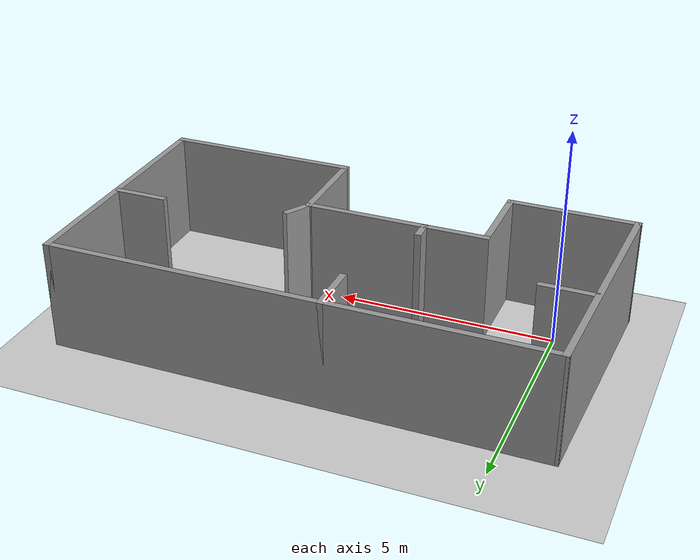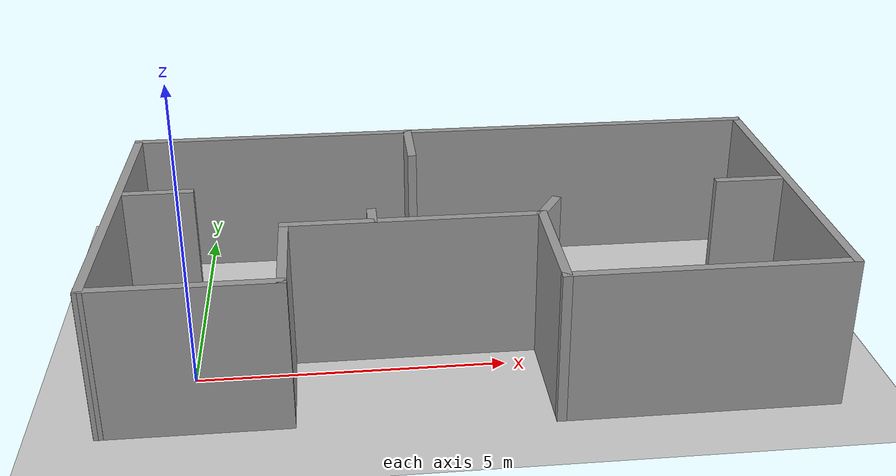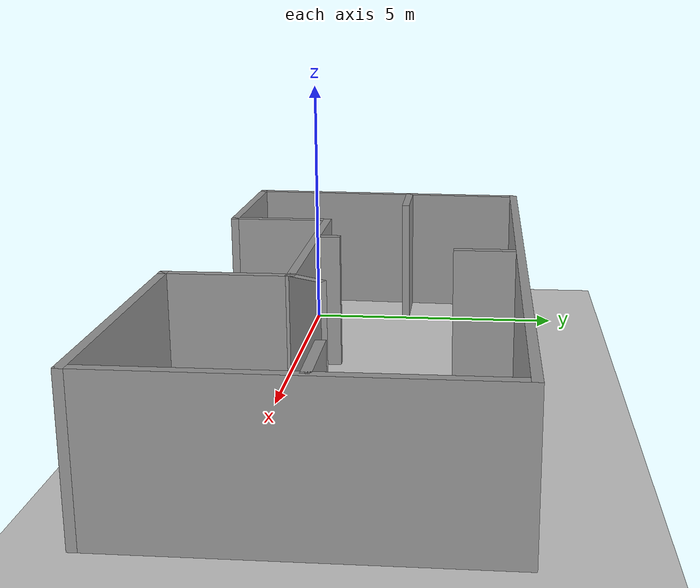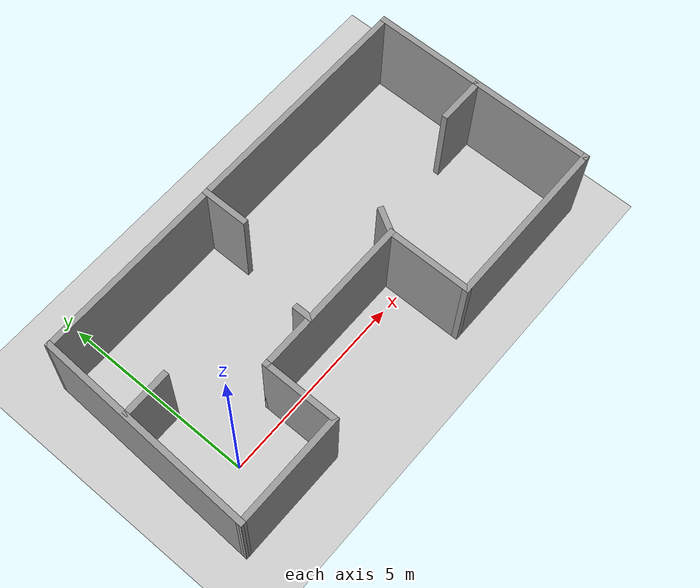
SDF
<sdf version="1.7">
 <world name="default">
  <light name="sun" type="directional">
   <pose>0 0 10 0 -0 0</pose>
   <diffuse>0.8 0.8 0.8 1</diffuse>
   <specular>0.2 0.2 0.2 1</specular>
   <attenuation>
    <range>1000</range>
    <constant>0.9</constant>
    <linear>0.01</linear>
    <quadratic>0.001</quadratic>
   </attenuation>
   <direction>-0.5 0.1 -0.9</direction>
   <spot><inner_angle>0</inner_angle><outer_angle>0</outer_angle><falloff>0</falloff></spot>
  </light>
  <model name="ground_plane">
   <static>1</static>
   <link name="link">
    <collision name="collision">
     <geometry><plane><normal>0 0 1</normal><size>100 100</size></plane></geometry>
     <surface>
      <contact><collide_bitmask>65535</collide_bitmask></contact>
      <friction><ode><mu>100</mu><mu2>50</mu2></ode></friction>
     </surface>
    </collision>
    <visual name="visual">
     <cast_shadows>0</cast_shadows>
     <geometry><plane><normal>0 0 1</normal><size>100 100</size></plane></geometry>
     <material>
      <script><uri>file://media/materials/scripts/gazebo.material</uri><name>Gazebo/Grey</name></script>
     </material>
    </visual>
   </link>
  </model>
  <gravity>0 0 -9.8</gravity>
  <magnetic_field>6e-06 2.3e-05 -4.2e-05</magnetic_field>
  <atmosphere type="adiabatic"/>
  <physics type="ode">
   <max_step_size>0.001</max_step_size>
   <real_time_factor>1</real_time_factor>
   <real_time_update_rate>1000</real_time_update_rate>
  </physics>
  <scene><ambient>0.4 0.4 0.4 1</ambient><background>0.7 0.7 0.7 1</background><shadows>1</shadows></scene>
  <audio><device>default</device></audio>
  <spherical_coordinates>
   <surface_model>EARTH_WGS84</surface_model>
   <latitude_deg>0</latitude_deg>
   <longitude_deg>0</longitude_deg>
   <elevation>0</elevation>
   <heading_deg>0</heading_deg>
  </spherical_coordinates>
  <model name="Untitled">
   <pose>4.32473 1.76635 0 0 -0 0</pose>
   <link name="Wall_0">
    <collision name="Wall_0_Collision">
     <geometry><box><size>11.25 0.15 2.5</size></box></geometry>
     <pose>0 0 1.25 0 -0 0</pose>
    </collision>
    <visual name="Wall_0_Visual">
     <pose>0 0 1.25 0 -0 0</pose>
     <geometry><box><size>11.25 0.15 2.5</size></box></geometry>
     <material>
      <script><uri>file://media/materials/scripts/gazebo.material</uri><name>Gazebo/Grey</name></script>
      <ambient>1 1 1 1</ambient>
     </material>
     <meta><layer>0</layer></meta>
    </visual>
    <pose>0.101314 2.4225 0 0 -0 0</pose>
   </link>
   <link name="Wall_1">
    <collision name="Wall_1_Collision">
     <geometry><box><size>6 0.15 2.5</size></box></geometry>
     <pose>0 0 1.25 0 -0 0</pose>
    </collision>
    <visual name="Wall_1_Visual">
     <pose>0 0 1.25 0 -0 0</pose>
     <geometry><box><size>6 0.15 2.5</size></box></geometry>
     <material>
      <script><uri>file://media/materials/scripts/gazebo.material</uri><name>Gazebo/Grey</name></script>
      <ambient>1 1 1 1</ambient>
     </material>
     <meta><layer>0</layer></meta>
    </visual>
    <pose>5.65131 -0.5025 0 0 -0 -1.5708</pose>
   </link>
   <link name="Wall_11">
    <collision name="Wall_11_Collision">
     <geometry><box><size>1.25 0.15 2.5</size></box></geometry>
     <pose>0 0 1.25 0 -0 0</pose>
    </collision>
    <visual name="Wall_11_Visual">
     <pose>0 0 1.25 0 -0 0</pose>
     <geometry><box><size>1.25 0.15 2.5</size></box></geometry>
     <material>
      <script><uri>file://media/materials/scripts/gazebo.material</uri><name>Gazebo/Grey</name></script>
      <ambient>1 1 1 1</ambient>
     </material>
     <meta><layer>0</layer></meta>
    </visual>
    <pose>-4.91869 0.1325 0 0 -0 0</pose>
   </link>
   <link name="Wall_13">
    <collision name="Wall_13_Collision">
     <geometry><box><size>0.5 0.15 2.5</size></box></geometry>
     <pose>0 0 1.25 0 -0 0</pose>
    </collision>
    <visual name="Wall_13_Visual">
     <pose>0 0 1.25 0 -0 0</pose>
     <geometry><box><size>0.5 0.15 2.5</size></box></geometry>
     <material>
      <script><uri>file://media/materials/scripts/gazebo.material</uri><name>Gazebo/Grey</name></script>
      <ambient>1 1 1 1</ambient>
     </material>
     <meta><layer>0</layer></meta>
    </visual>
    <pose>-1.40869 -1.1325 0 0 -0 1.5708</pose>
   </link>
   <link name="Wall_15">
    <collision name="Wall_15_Collision">
     <geometry><box><size>1.25 0.15 2.5</size></box></geometry>
     <pose>0 0 1.25 0 -0 0</pose>
    </collision>
    <visual name="Wall_15_Visual">
     <pose>0 0 1.25 0 -0 0</pose>
     <geometry><box><size>1.25 0.15 2.5</size></box></geometry>
     <material>
      <script><uri>file://media/materials/scripts/gazebo.material</uri><name>Gazebo/Grey</name></script>
      <ambient>1 1 1 1</ambient>
     </material>
     <meta><layer>0</layer></meta>
    </visual>
    <pose>5.04131 -0.3675 0 0 -0 3.14159</pose>
   </link>
   <link name="Wall_17">
    <collision name="Wall_17_Collision">
     <geometry><box><size>0.75 0.15 2.5</size></box></geometry>
     <pose>0 0 1.25 0 -0 0</pose>
    </collision>
    <visual name="Wall_17_Visual">
     <pose>0 0 1.25 0 -0 0</pose>
     <geometry><box><size>0.75 0.15 2.5</size></box></geometry>
     <material>
      <script><uri>file://media/materials/scripts/gazebo.material</uri><name>Gazebo/Grey</name></script>
      <ambient>1 1 1 1</ambient>
     </material>
     <meta><layer>0</layer></meta>
    </visual>
    <pose>1.45131 -1.06769 0 0 -0 1.0472</pose>
   </link>
   <link name="Wall_2">
    <collision name="Wall_2_Collision">
     <geometry><box><size>4.5 0.15 2.5</size></box></geometry>
     <pose>0 0 1.25 0 -0 0</pose>
    </collision>
    <visual name="Wall_2_Visual">
     <pose>0 0 1.25 0 -0 0</pose>
     <geometry><box><size>4.5 0.15 2.5</size></box></geometry>
     <material>
      <script><uri>file://media/materials/scripts/gazebo.material</uri><name>Gazebo/Grey</name></script>
      <ambient>1 1 1 1</ambient>
     </material>
     <meta><layer>0</layer></meta>
    </visual>
    <pose>3.47631 -3.4275 0 0 -0 3.14159</pose>
   </link>
   <link name="Wall_3">
    <collision name="Wall_3_Collision">
     <geometry><box><size>2.25 0.15 2.5</size></box></geometry>
     <pose>0 0 1.25 0 -0 0</pose>
    </collision>
    <visual name="Wall_3_Visual">
     <pose>0 0 1.25 0 -0 0</pose>
     <geometry><box><size>2.25 0.15 2.5</size></box></geometry>
     <material>
      <script><uri>file://media/materials/scripts/gazebo.material</uri><name>Gazebo/Grey</name></script>
      <ambient>1 1 1 1</ambient>
     </material>
     <meta><layer>0</layer></meta>
    </visual>
    <pose>1.30131 -2.3775 0 0 -0 1.5708</pose>
   </link>
   <link name="Wall_4">
    <collision name="Wall_4_Collision">
     <geometry><box><size>4.25 0.15 2.5</size></box></geometry>
     <pose>0 0 1.25 0 -0 0</pose>
    </collision>
    <visual name="Wall_4_Visual">
     <pose>0 0 1.25 0 -0 0</pose>
     <geometry><box><size>4.25 0.15 2.5</size></box></geometry>
     <material>
      <script><uri>file://media/materials/scripts/gazebo.material</uri><name>Gazebo/Grey</name></script>
      <ambient>1 1 1 1</ambient>
     </material>
     <meta><layer>0</layer></meta>
    </visual>
    <pose>-0.748686 -1.3275 0 0 -0 3.14159</pose>
   </link>
   <link name="Wall_5">
    <collision name="Wall_5_Collision">
     <geometry><box><size>2 0.15 2.5</size></box></geometry>
     <pose>0 0 1.25 0 -0 0</pose>
    </collision>
    <visual name="Wall_5_Visual">
     <pose>0 0 1.25 0 -0 0</pose>
     <geometry><box><size>2 0.15 2.5</size></box></geometry>
     <material>
      <script><uri>file://media/materials/scripts/gazebo.material</uri><name>Gazebo/Grey</name></script>
      <ambient>1 1 1 1</ambient>
     </material>
     <meta><layer>0</layer></meta>
    </visual>
    <pose>-2.79869 -2.2525 0 0 -0 -1.5708</pose>
   </link>
   <link name="Wall_6">
    <collision name="Wall_6_Collision">
     <geometry><box><size>3 0.15 2.5</size></box></geometry>
     <pose>0 0 1.25 0 -0 0</pose>
    </collision>
    <visual name="Wall_6_Visual">
     <pose>0 0 1.25 0 -0 0</pose>
     <geometry><box><size>3 0.15 2.5</size></box></geometry>
     <material>
      <script><uri>file://media/materials/scripts/gazebo.material</uri><name>Gazebo/Grey</name></script>
      <ambient>1 1 1 1</ambient>
     </material>
     <meta><layer>0</layer></meta>
    </visual>
    <pose>-4.22369 -3.1775 0 0 -0 3.14159</pose>
   </link>
   <link name="Wall_7">
    <collision name="Wall_7_Collision">
     <geometry><box><size>5.75357 0.15 2.5</size></box></geometry>
     <pose>0 0 1.25 0 -0 0</pose>
    </collision>
    <visual name="Wall_7_Visual">
     <pose>0 0 1.25 0 -0 0</pose>
     <geometry><box><size>5.75357 0.15 2.5</size></box></geometry>
     <material>
      <script><uri>file://media/materials/scripts/gazebo.material</uri><name>Gazebo/Grey</name></script>
      <ambient>1 1 1 1</ambient>
     </material>
     <meta><layer>0</layer></meta>
    </visual>
    <pose>-5.54869 -0.3775 0 0 -0 1.5351</pose>
   </link>
   <link name="Wall_9">
    <collision name="Wall_9_Collision">
     <geometry><box><size>1.25 0.15 2.5</size></box></geometry>
     <pose>0 0 1.25 0 -0 0</pose>
    </collision>
    <visual name="Wall_9_Visual">
     <pose>0 0 1.25 0 -0 0</pose>
     <geometry><box><size>1.25 0.15 2.5</size></box></geometry>
     <material>
      <script><uri>file://media/materials/scripts/gazebo.material</uri><name>Gazebo/Grey</name></script>
      <ambient>1 1 1 1</ambient>
     </material>
     <meta><layer>0</layer></meta>
    </visual>
    <pose>-0.588686 1.8725 0 0 -0 -1.5708</pose>
   </link>
   <static>1</static>
  </model>
 </world>
</sdf>
